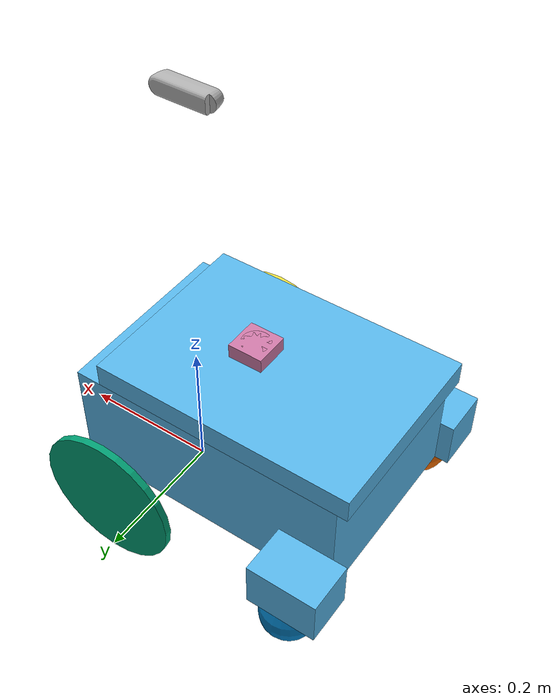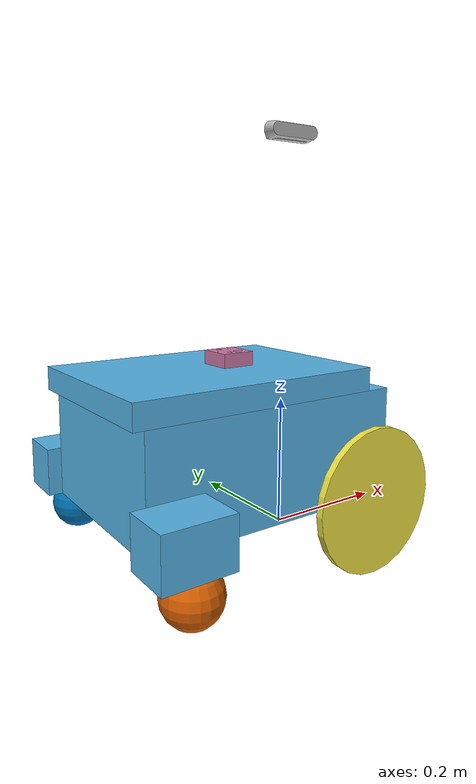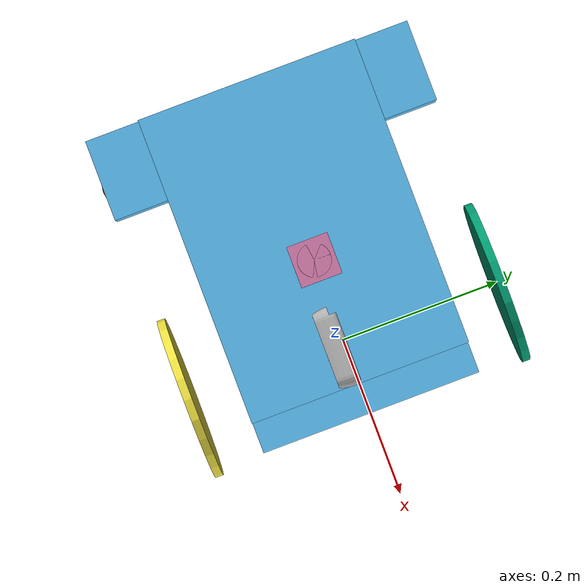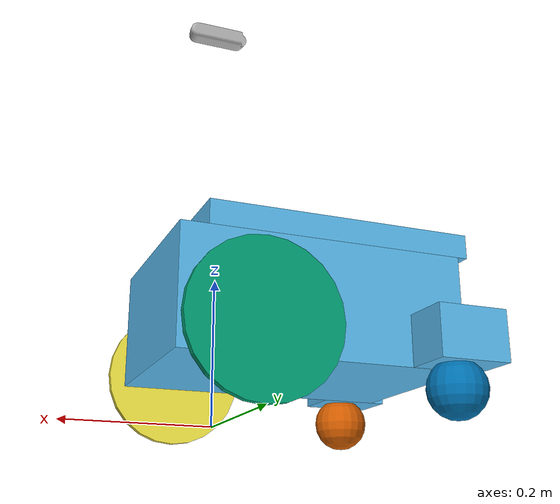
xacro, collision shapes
<?xml version='1.0' encoding='utf-8'?>
<robot xmlns:xacro="http://www.ros.org/wiki/xacro" name="krytn">

    <xacro:arg name="with_sensors" default="true" />

    <!-- Include the robot base. Configure it with a differential drive control plugin -->
    <xacro:include filename="$(find mobile_robot_gazebo_example)/worlds_and_models/krytn/magni.urdf.xacro" />

    <xacro:if value="$(arg with_sensors)">
        <!-- Include an extra 2D Lidar -->
        <xacro:include filename="$(find mobile_robot_gazebo_example)/worlds_and_models/krytn/lidar_2d_v1.urdf.xacro" />

        <!-- Include a realsense d435 -->
        <xacro:include filename="$(find mobile_robot_gazebo_example)/worlds_and_models/krytn/realsense_d435.urdf.xacro" />
    </xacro:if>

    <!-- Gazebo specific plugins-->
    <gazebo >

        <xacro:if value="$(arg with_sensors)">
            <plugin filename="ignition-gazebo-sensors-system" name="ignition::gazebo::systems::Sensors">
                <render_engine>ogre2</render_engine>
            </plugin>
        </xacro:if>

        <!-- Publish joints for robot description tf publisher. -->
        <plugin filename="ignition-gazebo-joint-state-publisher-system" name="ignition::gazebo::systems::JointStatePublisher">
            <topic>joint_states</topic>
        </plugin>

        <!-- Plugin to allow Gazebo to recieve cmd_vel and rotate wheels in Gazebo. -->
        <plugin filename="ignition-gazebo-diff-drive-system" name="ignition::gazebo::systems::DiffDrive">

            <left_joint>left_wheel_joint</left_joint>

            <right_joint>right_wheel_joint</right_joint>

            <frame_id>odom</frame_id>
            <wheel_separation>0.326</wheel_separation>
            <wheel_radius>0.128</wheel_radius>
            <odom_publish_frequency>20</odom_publish_frequency>
            <max_linear_acceleration>1</max_linear_acceleration>
            <min_linear_acceleration>-1</min_linear_acceleration>
            <max_angular_acceleration>2</max_angular_acceleration>
            <min_angular_acceleration>-2</min_angular_acceleration>
            <max_linear_velocity>0.5</max_linear_velocity>
            <min_linear_velocity>-0.5</min_linear_velocity>
            <max_angular_velocity>1</max_angular_velocity>
            <min_angular_velocity>-1</min_angular_velocity>
        </plugin>

    </gazebo>
</robot>

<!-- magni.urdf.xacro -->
<robot xmlns:xacro="http://www.ros.org/wiki/xacro">

  <xacro:property name="wheel_r" value="0.1" />
  <xacro:property name="wheel_xpos" value="0.11" />
  <xacro:include filename="$(find mobile_robot_gazebo_example)/worlds_and_models/krytn/inertial.xacro" />

  <xacro:macro name="low_friction">
              <mu>0.1</mu>
              <mu1>0.1</mu1>
              <mu2>0.1</mu2>
              <slip1>0</slip1>
              <slip2>0</slip2>
  </xacro:macro>

  <xacro:macro name="high_friction">
                <mu>0.5</mu>
                <mu1>0.5</mu1>
                <mu2>0.5</mu2>
                <minDepth>0.005</minDepth>
                <kp>1e8</kp>

  </xacro:macro>

 <link name="base_footprint"/>
  <joint name="base_footprint_joint" type="fixed">
    <parent link="base_footprint"/>
    <child link="base_link"/>
    <origin xyz="0 0 ${wheel_r}" rpy="0 0 0"/>
  </joint>
  <!-- Base Link -->
  <link name="base_link">
    <origin xyz="-0.25 0 ${0.03}" rpy="0 0 0" />

    <visual>
      <origin xyz="${-wheel_xpos} 0 ${-wheel_r+0.071}" rpy="0 0 0" />
      <geometry>
        <mesh filename="file://$(find mobile_robot_gazebo_example)/worlds_and_models/krytn/meshes/magni_body.dae" />
      </geometry>
    </visual>

    <collision>
	    <origin xyz="${-wheel_xpos} 0 ${-wheel_r+0.151}" rpy="0 0 0" />
      <geometry>
        <box size="0.398 0.268 0.160"/>
      </geometry>
    </collision>

    <collision>
      <origin xyz="${-wheel_xpos-0.026} 0 ${-wheel_r+0.248}" rpy="0 0 0" />
      <geometry>
        <box size="0.375 0.268 0.034"/>
      </geometry>

    </collision>

    <collision>
      <origin xyz="${-wheel_xpos-0.169} 0.169 ${-wheel_r+0.106}" rpy="0 0 0" />
      <geometry>
        <box size="0.1 0.07 0.07"/>
      </geometry>
    </collision>

    <collision>
      <origin xyz="${-wheel_xpos-0.169} -0.169 ${-wheel_r+0.106}" rpy="0 0 0" />
      <geometry>
        <box size="0.1 0.07 0.07"/>
      </geometry>
    </collision>

    <xacro:box_inertial_with_origin  x="0.398" y="0.221" z="0.150" mass="10.0">
      <origin xyz="-0.15 0 0.03" rpy="0 0 0" />
    </xacro:box_inertial_with_origin>

  </link>

  <gazebo reference="base_link">
  <xacro:low_friction/>
  </gazebo>

 <!-- Macro for defining wheels -->
  <xacro:macro name="wheel" params="prefix reflect">
    <link name="${prefix}_wheel">

      <collision>
        <origin xyz="${0.033*reflect} 0 0" rpy="0 ${pi/2} 0" />
        <geometry>
          <cylinder radius="${wheel_r}" length="0.01"/>
        </geometry>
      </collision>

      <visual>
        <origin xyz="${-0.071*reflect} 0 0" rpy="0 ${(reflect-1)*pi/2} 0" />
        <geometry>
          <mesh filename="file://$(find mobile_robot_gazebo_example)/worlds_and_models/krytn/meshes/front_wheel.dae" />
        </geometry>
      </visual>

      <xacro:cylinder_inertial_with_origin radius="${wheel_r}" length="0.05" mass="1.34">
        <origin xyz="0 0 0" rpy="0 ${pi/2} 0" />
      </xacro:cylinder_inertial_with_origin>
    </link>

    <joint name="${prefix}_wheel_joint" type="continuous">
      <axis xyz="1 0 0" rpy="0 0 0" />
      <parent link="base_link"/>
      <child link="${prefix}_wheel"/>
      <origin xyz="0 ${0.163*reflect} 0" rpy="0 0 ${pi/2}"/>
      <dynamics damping="0.2" friction="0.8"/>

    </joint>

    <gazebo reference="${prefix}_wheel">
    <xacro:high_friction/>
    </gazebo>

  </xacro:macro>

  <!--- create wheels -->
  <xacro:wheel prefix="left" reflect="1"/>
  <xacro:wheel prefix="right" reflect="-1"/>

  <!-- Macro for defining caster wheels -->
  <xacro:macro name="caster_wheel" params="prefix reflect">
    <link name="${prefix}_caster_wheel">
      <origin xyz="-0.37 ${reflect*0.169} ${-wheel_r+0.04}" rpy="0 0 0" />
      <collision>
        <origin xyz="-0.27 ${reflect*0.169} ${-wheel_r+0.04}" rpy="0 0 0" />
        <geometry>
          <sphere radius="0.04"/>
        </geometry>

      </collision>
      <visual>
        <origin xyz="-0.25 ${reflect*0.169} 0" rpy="0 0 ${pi}" />

        <geometry>
          <mesh filename="file://$(find mobile_robot_gazebo_example)/worlds_and_models/krytn/meshes/caster_wheel.dae" />
        </geometry>
      </visual>

    </link>

    <joint name="${prefix}_caster_wheel_joint" type="fixed">
      <parent link="base_link"/>
      <child link="${prefix}_caster_wheel"/>

    </joint>

  <gazebo reference="${prefix}_caster_wheel">
     <xacro:low_friction/>
  </gazebo>

  </xacro:macro>

    <!-- and caster wheels )-->
  <xacro:caster_wheel prefix="left" reflect="1"/>
  <xacro:caster_wheel prefix="right" reflect="-1"/>

</robot>

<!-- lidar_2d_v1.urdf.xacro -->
<robot xmlns:xacro="http://wiki.ros.org/xacro">

  <link name="lidar_2d_v1">
    <origin xyz="0.1 0 0.36" rpy="0 0 0" />

    <xacro:cylinder_inertial_with_origin radius="0.02" length="0.35" mass="0.13">
      <origin xyz="0 0 0.03" rpy="0 ${pi/2} 0" />
    </xacro:cylinder_inertial_with_origin>

    <collision name="collision_base">
      <pose>0 0 0.0175015175 0 0 0</pose>
      <geometry>
        <box size="0.05001062 0.05001062 0.035003035"/>
      </geometry>
    </collision>
    <collision name="collision_top">
      <pose>0 0 0.0525045525 0 0 0</pose>
      <geometry>
        <cylinder radius="0.02" length="0.035003035" />
      </geometry>
    </collision>
    <visual name="visual">
      <pose>0 0 0 0 0 1.5707</pose>
      <geometry>
        <mesh filename="file://$(find mobile_robot_gazebo_example)/worlds_and_models/krytn//meshes/lidar_2d_v1.dae"/>
      </geometry>
    </visual>

  </link>

  <!-- This joint connects the robot to the lidar -->
  <joint name="lidar_joint" type="fixed">
    <parent link="base_footprint" />
    <child link="lidar_2d_v1" />
    <origin rpy="0 0 0" xyz="-0.1 0 0.268"/>
  </joint>

  <gazebo reference="lidar_2d_v1">
    <sensor name="lidar_2d_v1" type="gpu_ray">
      <topic>lidar</topic>
      <ignition_frame_id>lidar_2d_v1</ignition_frame_id>
      <pose>0 0 0.0525045525 0 0 0</pose>
      <ray>
        <scan>
          <horizontal>
            <samples>90</samples>
            <resolution>1</resolution>
            <min_angle>-1.41</min_angle>
            <max_angle>1.41</max_angle>
          </horizontal>
        </scan>
        <range>
          <min>0.060</min>
          <max>10</max>
          <resolution>0.04</resolution>
        </range>
        <noise>
          <type>gaussian</type>
          <mean>0.0</mean>
          <stddev>0.001</stddev>
        </noise>
      </ray>
      <always_on>0</always_on>
      <update_rate>20</update_rate>
      <visualize>false</visualize>
    </sensor>
  </gazebo>

</robot>

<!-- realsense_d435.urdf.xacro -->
<robot xmlns:xacro="http://wiki.ros.org/xacro">

  <link name="realsense_d435">
    <origin xyz="0.2 0 0.2" rpy="0 0 0" />
    <collision name="collision">
      <geometry>
        <mesh filename="file://$(find mobile_robot_gazebo_example)/worlds_and_models/krytn/meshes/realsense.dae" />
      </geometry>
    </collision>
    <visual name= "visual">
      <geometry>
        <mesh filename="file://$(find mobile_robot_gazebo_example)/worlds_and_models/krytn/meshes/realsense.dae">
          <submesh>
            <name>RealSense</name>
            <center>false</center>
          </submesh>
        </mesh>
      </geometry>
    </visual>
  </link>

  <joint name="depth_camera_joint" type="fixed">
    <parent link="base_footprint" />
    <child link="realsense_d435" />
    <origin rpy="0 0 0" xyz="0 0 0.6"/>
  </joint>

  <gazebo reference="realsense_d435">

    <sensor name="realsense_d435" type="rgbd_camera">
      <topic>realsense</topic>
      <ignition_frame_id>realsense_d435</ignition_frame_id>
      <update_rate>5</update_rate>
      <camera name="camera">
        <horizontal_fov>0.5</horizontal_fov>
        <lens>
          <intrinsics>
            <!-- fx = fy = width / ( 2 * tan (hfov / 2 ) ) -->
            <fx>554.25469</fx>
            <fy>554.25469</fy>
            <!-- cx = ( width + 1 ) / 2 -->
            <cx>320.5</cx>
            <!-- cy = ( height + 1 ) / 2 -->
            <cy>240.5</cy>
            <s>0</s>
          </intrinsics>
        </lens>
        <distortion>
          <k1>0.0</k1>
          <k2>0.0</k2>
          <k3>0.0</k3>
          <p1>0.0</p1>
          <p2>0.0</p2>
          <center>0.5 0.5</center>
        </distortion>
        <image>
          <width>160</width>
          <height>120</height>
          <format>R8G8B8</format>
        </image>
        <clip>
          <near>0.01</near>
          <far>10</far>
        </clip>
        <depth_camera>
          <clip>
            <near>0.1</near>
            <far>10</far>
          </clip>
        </depth_camera>
        <noise>
          <type>gaussian</type>
          <mean>0</mean>
          <stddev>0.007</stddev>
        </noise>
      </camera>
    </sensor>
  </gazebo>

</robot>
